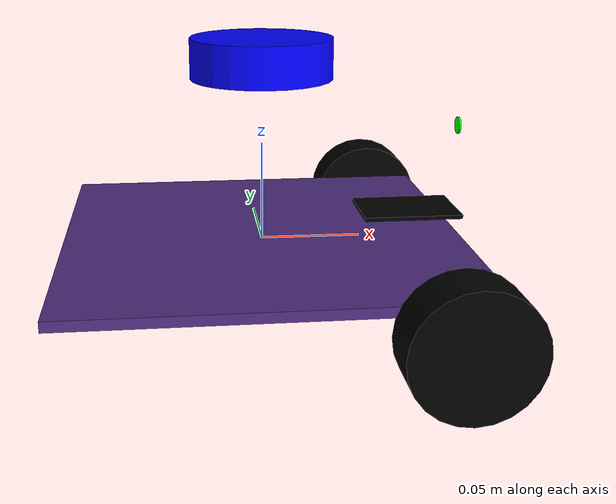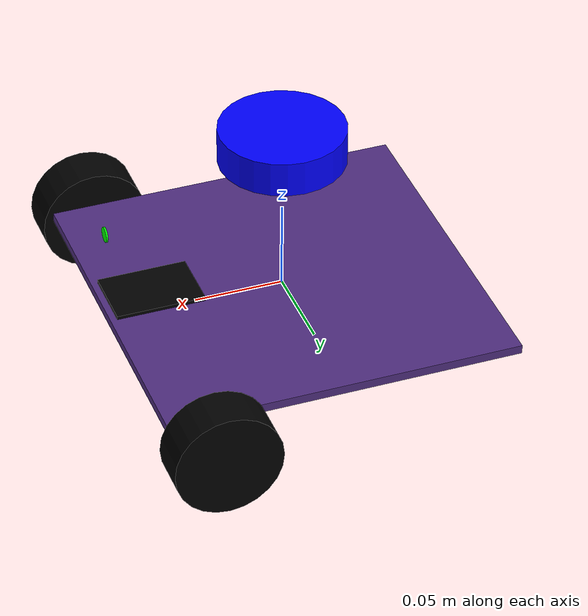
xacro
<?xml version="1.0"?>
<robot xmlns:xacro="http://www.ros.org/wiki/xacro" name="demobot">
    <xacro:include filename="robot_core.xacro" />
    <xacro:include filename="gazebo_diff_drive_plugin.xacro" />
    <xacro:include filename="lidar.xacro" />
    <xacro:include filename="camera.xacro" />
    <xacro:include filename="imu.xacro" />

</robot>

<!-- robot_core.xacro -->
<robot xmlns:xacro="http://www.ros.org/wiki/xacro" >

    <xacro:include filename="materials.xacro" />
    <xacro:include filename="inertial.xacro" />

    <!-- Constants -->
    <xacro:property name="PI" value="3.14159265359" />

    <xacro:property name="BASE_X" value="0.2" />
    <xacro:property name="BASE_Y" value="0.2" />
    <xacro:property name="BASE_Z" value="0.005" />
    <xacro:property name="BASE_M" value="2" />

    <xacro:property name="CASTER_OFF_X" value="-0.09" />
    <xacro:property name="CASTER_OFF_Z" value="-0.03" />
    <xacro:property name="CASTER_R" value="0.01" />
    <xacro:property name="CASTER_M" value="0.1" />

    <xacro:property name="WHEEL_OFF_X" value="0.075" />
    <xacro:property name="WHEEL_OFF_Y" value="0.115" />
    <xacro:property name="WHEEL_OFF_Z" value="-0.01" />
    <xacro:property name="WHEEL_L" value="0.025" />
    <xacro:property name="WHEEL_R" value="0.03" />
    <xacro:property name="WHEEL_M" value="0.05" />

    <!-- Macros -->
    <xacro:macro name="Wheel" params="prefix y_reflect">
        <joint name="${prefix}_wheel_joint" type="continuous">
            <parent link="base_link" />
            <child link="${prefix}_wheel_link" />
            <origin xyz="${WHEEL_OFF_X} ${y_reflect*WHEEL_OFF_Y} ${WHEEL_OFF_Z}" rpy="${-PI/2} 0 0" />
            <axis xyz="0 0 1" />
        </joint>

        <link name="${prefix}_wheel_link">
            <visual>
                <geometry>
                    <cylinder radius="${WHEEL_R}" length="${WHEEL_L}" />
                </geometry>
                <material name="black" />
            </visual>

            <collision>
                <geometry>
                    <cylinder radius="${WHEEL_R}" length="${WHEEL_L}" />
                </geometry>
            </collision>

            <xacro:CylinderInertial m="${WHEEL_M}" r="${WHEEL_R}" l="${WHEEL_L}" />
        </link>
        <gazebo reference="${prefix}_wheel_link">
            <material>Gazebo/Black</material>
        </gazebo>
    </xacro:macro>

    <!-- Start Modelling -->
    <link name="base_link">
        <visual>
            <geometry>
                <box size="${BASE_X} ${BASE_Y} ${BASE_Z}"/>
            </geometry>
            <material name="purple"/>
        </visual>

        <collision>
            <geometry>
                <box size="${BASE_X} ${BASE_Y} ${BASE_Z}"/>
            </geometry>
        </collision>

        <xacro:BoxInertial m="${BASE_M}" x="${BASE_X}" y="${BASE_Y}" z="${BASE_Z}" />
    </link>
    <gazebo reference="base_link">
        <material>Gazebo/Purple</material>
    </gazebo>

    <joint name="base_joint" type="fixed">
        <parent link="base_link"/>
        <child link="base_footprint"/>
        <origin xyz="0.0 0.0 ${WHEEL_OFF_Z-WHEEL_R}" />
    </joint>

    <link name="base_footprint"/>

    <joint name="caster_joint" type="fixed">
        <parent link="base_link"/>
        <child link="caster"/>
        <origin xyz="${CASTER_OFF_X} 0 ${CASTER_OFF_Z}"/>
    </joint>

    <link name="caster">
        <visual>
            <geometry>
                <sphere radius="${CASTER_R}"/>
            </geometry>
            <material name="gray"/>
        </visual>

        <collision>
            <geometry>
                <sphere radius="${CASTER_R}"/>
            </geometry>
        </collision>

        <xacro:SphereInertial m="${CASTER_M}" r="${CASTER_R}" />
    </link>
    <gazebo reference="caster">
        <mu1>0.0001</mu1>
        <mu2>0.0001</mu2>
        <material>Gazebo/Gray</material>
    </gazebo>

    <xacro:Wheel prefix="left" y_reflect="1" />
    <xacro:Wheel prefix="right" y_reflect="-1" />

</robot>

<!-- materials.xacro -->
<robot xmlns:xacro="http://www.ros.org/wiki/xacro" >

    <material name="black">
        <color rgba="0 0 0 1" />
    </material>

    <material name="white">
        <color rgba="1 1 1 1" />
    </material>

    <material name="purple">
        <color rgba="0.3098 0.1765 0.4980 1" />
    </material>

    <material name="orange">
        <color rgba="1 0.6471 0 1" />
    </material>

    <material name="navy">
        <color rgba="0 0 0.5 1" />
    </material>

    <material name="blue">
        <color rgba="0 0 1 1" />
    </material>

    <material name="green">
        <color rgba="0 1 0 1" />
    </material>

    <material name="gray">
        <color rgba="0.5 0.5 0.5 1" />
    </material>

</robot>

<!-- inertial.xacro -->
<robot xmlns:xacro="http://www.ros.org/wiki/xacro" >

    <xacro:macro name="BoxInertial" params="m x y z">
        <inertial>
            <mass value="${m}" />
            <inertia ixx="${(m/12) * (z*z + y*y)}" ixy="0.0" ixz="0.0" iyy="${(m/12) * (x*x + z*z)}" iyz="0.0" izz="${(m/12) * (y*y + x*x)}" />
        </inertial>
    </xacro:macro>

    <xacro:macro name="CylinderInertial" params="m r l">
        <inertial>
            <mass value="${m}" />
            <inertia ixx="${(m/12) * (3*r*r + l*l)}" ixy="0" ixz="0" iyy="${(m/12) * (3*r*r + l*l)}" iyz="0" izz="${(m/2) * (r*r)}" />
        </inertial>
    </xacro:macro>

    <xacro:macro name="SphereInertial" params="m r">
        <inertial>
            <mass value="${m}" />
            <inertia ixx="${(2/5) * m * (r*r)}" ixy="0.0" ixz="0.0" iyy="${(2/5) * m * (r*r)}" iyz="0.0" izz="${(2/5) * m * (r*r)}" />
        </inertial>
    </xacro:macro>

</robot>

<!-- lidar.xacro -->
<robot xmlns:xacro="http://www.ros.org/wiki/xacro" >

    <xacro:property name="LIDAR_R" value="0.035" />
    <xacro:property name="LIDAR_L" value="0.02" />
    <xacro:property name="LIDAR_OFF_Z" value="0.08" />
    <xacro:property name="LIDAR_M" value="0.17" />

    <joint name="lidar_joint" type="fixed">
        <parent link="base_link" />
        <child link="lidar" />
        <origin xyz="0 0 ${(BASE_Z+LIDAR_L)/2+LIDAR_OFF_Z}" />
    </joint>

    <link name="lidar">
        <visual>
            <geometry>
                <cylinder radius="${LIDAR_R}" length="${LIDAR_L}" />
            </geometry>
            <material name="blue" />
        </visual>

        <collision>
            <geometry>
                <cylinder radius="${LIDAR_R}" length="${LIDAR_L}" />
            </geometry>
        </collision>

        <xacro:CylinderInertial m="${LIDAR_M}" r="${LIDAR_R}" l="${LIDAR_L}" />

    </link>

    <gazebo reference="lidar">
        <material>Gazebo/Blue</material>
        <sensor name="lidar" type="ray">
            <always_on>true</always_on>
            <visualize>true</visualize>
            <update_rate>5</update_rate>
            <ray>
                <scan>
                    <horizontal>
                        <samples>360</samples>
                        <resolution>1.000000</resolution>
                        <min_angle>0.000000</min_angle>
                        <max_angle>6.280000</max_angle>
                    </horizontal>
                </scan>
                <range>
                    <min>0.120000</min>
                    <max>6</max>
                    <resolution>0.015000</resolution>
                </range>
                <noise>
                    <type>gaussian</type>
                    <mean>0.0</mean>
                    <stddev>0.01</stddev>
                </noise>
            </ray>
            <plugin name="scan" filename="libgazebo_ros_ray_sensor.so">
                <ros>
                    <remapping>~/out:=scan</remapping>
                </ros>
                <output_type>sensor_msgs/LaserScan</output_type>
                <frame_name>lidar</frame_name>
            </plugin>
        </sensor>
    </gazebo>

</robot>

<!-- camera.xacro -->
<robot xmlns:xacro="http://www.ros.org/wiki/xacro" >
    <xacro:property name="PI" value="3.14159265359" />
    <xacro:property name="CAM_R" value="0.00425" />
    <xacro:property name="CAM_L" value="0.001" />
    <xacro:property name="CAM_OFF_X" value="0.1" />
    <xacro:property name="CAM_OFF_Z" value="0.05" />
    <xacro:property name="CAM_M" value="0.005" />

    <joint name="camera_joint" type="fixed">
        <parent link="base_link" />
        <child link="camera" />
        <origin xyz="${CAM_OFF_X} 0 ${BASE_Z/2+CAM_R+CAM_OFF_Z}" rpy="0 ${-PI/2} 0"/>
    </joint>

    <link name="camera">
        <visual>
            <geometry>
                <cylinder radius="${CAM_R}" length="${CAM_L}" />
            </geometry>
            <material name="green" />
        </visual>

        <collision>
            <geometry>
                <cylinder radius="${CAM_R}" length="${CAM_L}" />
            </geometry>
        </collision>

        <xacro:CylinderInertial m="${CAM_M}" r="${CAM_R}" l="${CAM_L}" />
    </link>

    <gazebo reference="camera">
        <material>Gazebo/Green</material>
    </gazebo>

    <joint name="lens_joint" type="fixed">
        <parent link="camera" />
        <child link="lens" />
        <origin xyz="0 0 0" rpy="0 ${PI/2} 0"/>
    </joint>

    <link name="lens" />

    <gazebo reference="lens">
        <sensor name="rgb_camera" type="camera">
            <always_on>true</always_on>
            <visualize>true</visualize>
            <update_rate>30.0</update_rate>
            <camera name="rgb_camera">
                <horizontal_fov>1.3962634</horizontal_fov>
                <image>
                  <width>800</width>
                  <height>800</height>
                  <format>R8G8B8</format>
                </image>
                <clip>
                  <near>0.02</near>
                  <far>300</far>
                </clip>
                <noise>
                  <type>gaussian</type>
                  <mean>0.0</mean>
                  <stddev>0.007</stddev>
                </noise>
                <distortion>
                    <k1>0.1</k1>
                    <k2>0.1</k2>
                    <k3>0.1</k3>
                    <p1>0.1</p1>
                    <p2>0.1</p2>
                    <center>0.5 0.5</center>
                </distortion>
            </camera>

            <plugin name="camera_plugin" filename="libgazebo_ros_camera.so">
                <hack_baseline>0.07</hack_baseline>
                  </plugin>
        </sensor>
    </gazebo>

</robot>

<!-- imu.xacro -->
<robot xmlns:xacro="http://www.ros.org/wiki/xacro" >
    <xacro:property name="IMU_X" value="0.05" />
    <xacro:property name="IMU_Y" value="0.035" />
    <xacro:property name="IMU_Z" value="0.002" />
    <xacro:property name="IMU_OFF_X" value="0.075" />
    <xacro:property name="IMU_OFF_Z" value="0.01" />
    <xacro:property name="IMU_M" value="0.005" />

    <joint name="imu_joint" type="fixed">
        <parent link="base_link" />
        <child link="imu" />
        <origin xyz="${IMU_OFF_X} 0 ${(BASE_Z+IMU_Z)/2+IMU_OFF_Z}" />
    </joint>

    <link name="imu">
        <visual>
            <geometry>
                <box size="${IMU_X} ${IMU_Y} ${IMU_Z}" />
            </geometry>
            <material name="black" />
        </visual>

        <collision>
            <geometry>
                <box size="${IMU_X} ${IMU_Y} ${IMU_Z}" />
            </geometry>
        </collision>

        <xacro:BoxInertial m="${IMU_M}" x="${IMU_X}" y="${IMU_Y}" z="${IMU_Z}" />
    </link>

    <gazebo reference="imu">
        <sensor name="imu_sensor" type="imu">
         <plugin filename="libgazebo_ros_imu_sensor.so" name="imu_plugin">
            <ros>
              <remapping>~/out:=imu</remapping>
            </ros>
            <initial_orientation_as_reference>false</initial_orientation_as_reference>
          </plugin>
          <always_on>true</always_on>
          <update_rate>100</update_rate>
          <visualize>true</visualize>
          <imu>
            <angular_velocity>
              <x>
                <noise type="gaussian">
                  <mean>0.0</mean>
                  <stddev>2e-4</stddev>
                  <bias_mean>0.0000075</bias_mean>
                  <bias_stddev>0.0000008</bias_stddev>
                </noise>
              </x>
              <y>
                <noise type="gaussian">
                  <mean>0.0</mean>
                  <stddev>2e-4</stddev>
                  <bias_mean>0.0000075</bias_mean>
                  <bias_stddev>0.0000008</bias_stddev>
                </noise>
              </y>
              <z>
                <noise type="gaussian">
                  <mean>0.0</mean>
                  <stddev>2e-4</stddev>
                  <bias_mean>0.0000075</bias_mean>
                  <bias_stddev>0.0000008</bias_stddev>
                </noise>
              </z>
            </angular_velocity>
            <linear_acceleration>
              <x>
                <noise type="gaussian">
                  <mean>0.0</mean>
                  <stddev>1.7e-2</stddev>
                  <bias_mean>0.1</bias_mean>
                  <bias_stddev>0.001</bias_stddev>
                </noise>
              </x>
              <y>
                <noise type="gaussian">
                  <mean>0.0</mean>
                  <stddev>1.7e-2</stddev>
                  <bias_mean>0.1</bias_mean>
                  <bias_stddev>0.001</bias_stddev>
                </noise>
              </y>
              <z>
                <noise type="gaussian">
                  <mean>0.0</mean>
                  <stddev>1.7e-2</stddev>
                  <bias_mean>0.1</bias_mean>
                  <bias_stddev>0.001</bias_stddev>
                </noise>
              </z>
            </linear_acceleration>
          </imu>
        </sensor>
      </gazebo>

</robot>
